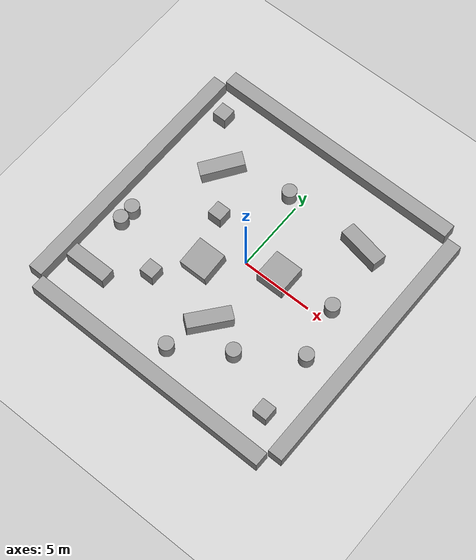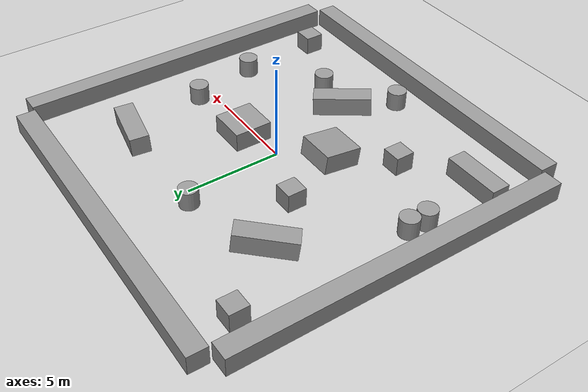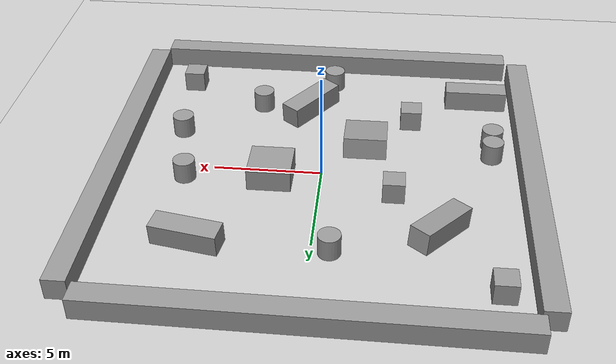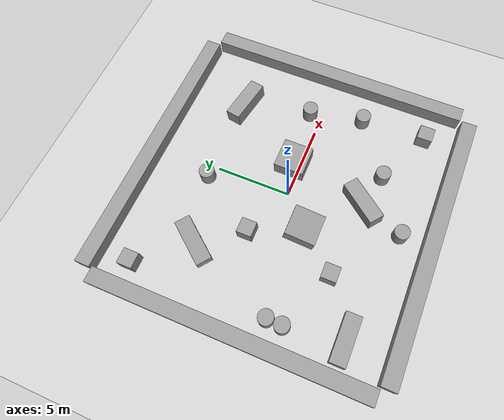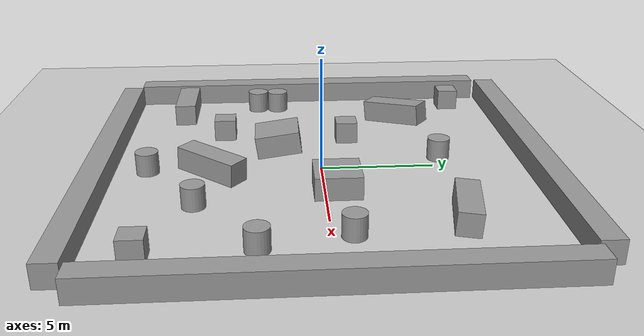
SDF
<sdf version="1.7">
 <world name="default">
  <light name="sun" type="directional">
   <pose>0 0 10 0 -0 0</pose>
   <diffuse>0.8 0.8 0.8 1</diffuse>
   <specular>0.2 0.2 0.2 1</specular>
   <attenuation>
    <range>1000</range>
    <constant>0.9</constant>
    <linear>0.01</linear>
    <quadratic>0.001</quadratic>
   </attenuation>
   <direction>-0.5 0.1 -0.9</direction>
   <spot><inner_angle>0</inner_angle><outer_angle>0</outer_angle><falloff>0</falloff></spot>
  </light>
  <model name="ground_plane">
   <static>1</static>
   <link name="link">
    <collision name="collision">
     <geometry><plane><normal>0 0 1</normal><size>100 100</size></plane></geometry>
     <surface><friction><ode><mu>100</mu><mu2>50</mu2></ode></friction></surface>
    </collision>
    <visual name="visual">
     <cast_shadows>0</cast_shadows>
     <geometry><plane><normal>0 0 1</normal><size>100 100</size></plane></geometry>
     <material>
      <script><uri>file://media/materials/scripts/gazebo.material</uri><name>Gazebo/Grey</name></script>
     </material>
    </visual>
   </link>
  </model>
  <gravity>0 0 -9.8</gravity>
  <magnetic_field>6e-06 2.3e-05 -4.2e-05</magnetic_field>
  <atmosphere type="adiabatic"/>
  <physics type="ode">
   <max_step_size>0.001</max_step_size>
   <real_time_factor>1</real_time_factor>
   <real_time_update_rate>1000</real_time_update_rate>
  </physics>
  <scene><ambient>0.4 0.4 0.4 1</ambient><background>0.7 0.7 0.7 1</background><shadows>1</shadows></scene>
  <spherical_coordinates>
   <surface_model>EARTH_WGS84</surface_model>
   <latitude_deg>0</latitude_deg>
   <longitude_deg>0</longitude_deg>
   <elevation>0</elevation>
   <heading_deg>0</heading_deg>
  </spherical_coordinates>
  <model name="unit_cylinder">
   <pose>-7.92938 -2.84187 0.499992 -3e-06 4e-06 0</pose>
   <link name="link">
    <inertial>
     <mass>1</mass>
     <inertia><ixx>0.145833</ixx><ixy>0</ixy><ixz>0</ixz><iyy>0.145833</iyy><iyz>0</iyz><izz>0.125</izz></inertia>
    </inertial>
    <collision name="collision">
     <geometry><cylinder><radius>0.5</radius><length>1</length></cylinder></geometry>
    </collision>
    <visual name="visual">
     <geometry><cylinder><radius>0.5</radius><length>1</length></cylinder></geometry>
     <material>
      <script><name>Gazebo/Grey</name><uri>file://media/materials/scripts/gazebo.material</uri></script>
     </material>
    </visual>
   </link>
  </model>
  <model name="unit_cylinder_0">
   <pose>-7.88725 -1.82072 0.499992 -3e-06 4e-06 0</pose>
   <link name="link">
    <inertial>
     <mass>1</mass>
     <inertia><ixx>0.145833</ixx><ixy>0</ixy><ixz>0</ixz><iyy>0.145833</iyy><iyz>0</iyz><izz>0.125</izz></inertia>
    </inertial>
    <collision name="collision">
     <geometry><cylinder><radius>0.5</radius><length>1</length></cylinder></geometry>
    </collision>
    <visual name="visual">
     <geometry><cylinder><radius>0.5</radius><length>1</length></cylinder></geometry>
     <material>
      <script><name>Gazebo/Grey</name><uri>file://media/materials/scripts/gazebo.material</uri></script>
     </material>
    </visual>
   </link>
  </model>
  <model name="unit_cylinder_1">
   <pose>-0.038035 -7.61761 0.499992 -3e-06 4e-06 0</pose>
   <link name="link">
    <inertial>
     <mass>1</mass>
     <inertia><ixx>0.145833</ixx><ixy>0</ixy><ixz>0</ixz><iyy>0.145833</iyy><iyz>0</iyz><izz>0.125</izz></inertia>
    </inertial>
    <collision name="collision">
     <geometry><cylinder><radius>0.5</radius><length>1</length></cylinder></geometry>
    </collision>
    <visual name="visual">
     <geometry><cylinder><radius>0.5</radius><length>1</length></cylinder></geometry>
     <material>
      <script><name>Gazebo/Grey</name><uri>file://media/materials/scripts/gazebo.material</uri></script>
     </material>
    </visual>
   </link>
  </model>
  <model name="unit_cylinder_1_clone">
   <pose>3.39415 -5.34145 0.499992 -3e-06 4e-06 0</pose>
   <link name="link">
    <inertial>
     <mass>1</mass>
     <inertia><ixx>0.145833</ixx><ixy>0</ixy><ixz>0</ixz><iyy>0.145833</iyy><iyz>0</iyz><izz>0.125</izz></inertia>
    </inertial>
    <collision name="collision">
     <geometry><cylinder><radius>0.5</radius><length>1</length></cylinder></geometry>
    </collision>
    <visual name="visual">
     <geometry><cylinder><radius>0.5</radius><length>1</length></cylinder></geometry>
     <material>
      <script><name>Gazebo/Grey</name><uri>file://media/materials/scripts/gazebo.material</uri></script>
     </material>
    </visual>
   </link>
  </model>
  <model name="unit_cylinder_1_clone_0">
   <pose>7.00763 -2.75863 0.499992 -3e-06 4e-06 0</pose>
   <link name="link">
    <inertial>
     <mass>1</mass>
     <inertia><ixx>0.145833</ixx><ixy>0</ixy><ixz>0</ixz><iyy>0.145833</iyy><iyz>0</iyz><izz>0.125</izz></inertia>
    </inertial>
    <collision name="collision">
     <geometry><cylinder><radius>0.5</radius><length>1</length></cylinder></geometry>
    </collision>
    <visual name="visual">
     <geometry><cylinder><radius>0.5</radius><length>1</length></cylinder></geometry>
     <material>
      <script><name>Gazebo/Grey</name><uri>file://media/materials/scripts/gazebo.material</uri></script>
     </material>
    </visual>
   </link>
  </model>
  <model name="unit_cylinder_1_clone_1">
   <pose>-0.802606 5.39177 0.499992 -3e-06 4e-06 0</pose>
   <link name="link">
    <inertial>
     <mass>1</mass>
     <inertia><ixx>0.145833</ixx><ixy>0</ixy><ixz>0</ixz><iyy>0.145833</iyy><iyz>0</iyz><izz>0.125</izz></inertia>
    </inertial>
    <collision name="collision">
     <geometry><cylinder><radius>0.5</radius><length>1</length></cylinder></geometry>
    </collision>
    <visual name="visual">
     <geometry><cylinder><radius>0.5</radius><length>1</length></cylinder></geometry>
     <material>
      <script><name>Gazebo/Grey</name><uri>file://media/materials/scripts/gazebo.material</uri></script>
     </material>
    </visual>
   </link>
  </model>
  <model name="unit_box_1">
   <pose>-7.82423 7.24411 0.499995 1e-05 -0 0</pose>
   <link name="link">
    <inertial>
     <mass>1</mass>
     <inertia>
      <ixx>0.166667</ixx>
      <ixy>0</ixy>
      <ixz>0</ixz>
      <iyy>0.166667</iyy>
      <iyz>0</iyz>
      <izz>0.166667</izz>
     </inertia>
    </inertial>
    <collision name="collision"><geometry><box><size>1 1 1</size></box></geometry></collision>
    <visual name="visual">
     <geometry><box><size>1 1 1</size></box></geometry>
     <material>
      <script><name>Gazebo/Grey</name><uri>file://media/materials/scripts/gazebo.material</uri></script>
     </material>
    </visual>
   </link>
  </model>
  <model name="unit_box_2">
   <pose>7.25218 -7.12106 0.499995 1e-05 -0 0</pose>
   <link name="link">
    <inertial>
     <mass>1</mass>
     <inertia>
      <ixx>0.166667</ixx>
      <ixy>0</ixy>
      <ixz>0</ixz>
      <iyy>0.166667</iyy>
      <iyz>0</iyz>
      <izz>0.166667</izz>
     </inertia>
    </inertial>
    <collision name="collision"><geometry><box><size>1 1 1</size></box></geometry></collision>
    <visual name="visual">
     <geometry><box><size>1 1 1</size></box></geometry>
     <material>
      <script><name>Gazebo/Grey</name><uri>file://media/materials/scripts/gazebo.material</uri></script>
     </material>
    </visual>
   </link>
  </model>
  <model name="unit_box_3">
   <pose>-4.04523 -4.39363 0.499995 1e-05 -0 0</pose>
   <link name="link">
    <inertial>
     <mass>1</mass>
     <inertia>
      <ixx>0.166667</ixx>
      <ixy>0</ixy>
      <ixz>0</ixz>
      <iyy>0.166667</iyy>
      <iyz>0</iyz>
      <izz>0.166667</izz>
     </inertia>
    </inertial>
    <collision name="collision"><geometry><box><size>1 1 1</size></box></geometry></collision>
    <visual name="visual">
     <geometry><box><size>1 1 1</size></box></geometry>
     <material>
      <script><name>Gazebo/Grey</name><uri>file://media/materials/scripts/gazebo.material</uri></script>
     </material>
    </visual>
   </link>
  </model>
  <model name="unit_box_4">
   <pose>-3.35202 1.40593 0.499995 1e-05 -0 0</pose>
   <link name="link">
    <inertial>
     <mass>1</mass>
     <inertia>
      <ixx>0.166667</ixx>
      <ixy>0</ixy>
      <ixz>0</ixz>
      <iyy>0.166667</iyy>
      <iyz>0</iyz>
      <izz>0.166667</izz>
     </inertia>
    </inertial>
    <collision name="collision"><geometry><box><size>1 1 1</size></box></geometry></collision>
    <visual name="visual">
     <geometry><box><size>1 1 1</size></box></geometry>
     <material>
      <script><name>Gazebo/Grey</name><uri>file://media/materials/scripts/gazebo.material</uri></script>
     </material>
    </visual>
   </link>
  </model>
  <model name="unit_cylinder_1_clone_2">
   <pose>6.21831 0.83068 0.499992 -3e-06 4e-06 0</pose>
   <link name="link">
    <inertial>
     <mass>1</mass>
     <inertia><ixx>0.145833</ixx><ixy>0</ixy><ixz>0</ixz><iyy>0.145833</iyy><iyz>0</iyz><izz>0.125</izz></inertia>
    </inertial>
    <collision name="collision">
     <geometry><cylinder><radius>0.5</radius><length>1</length></cylinder></geometry>
    </collision>
    <visual name="visual">
     <geometry><cylinder><radius>0.5</radius><length>1</length></cylinder></geometry>
     <material>
      <script><name>Gazebo/Grey</name><uri>file://media/materials/scripts/gazebo.material</uri></script>
     </material>
    </visual>
   </link>
  </model>
  <model name="unit_box_0_clone">
   <link name="link">
    <inertial>
     <mass>1</mass>
     <inertia>
      <ixx>0.166667</ixx>
      <ixy>0</ixy>
      <ixz>0</ixz>
      <iyy>0.166667</iyy>
      <iyz>0</iyz>
      <izz>0.166667</izz>
     </inertia>
    </inertial>
    <visual name="visual">
     <geometry><box><size>2 2 1</size></box></geometry>
     <material>
      <script><name>Gazebo/Grey</name><uri>file://media/materials/scripts/gazebo.material</uri></script>
      <shader type="pixel"><normal_map>__default__</normal_map></shader>
      <ambient>0.3 0.3 0.3 1</ambient>
      <diffuse>0.7 0.7 0.7 1</diffuse>
      <specular>0.01 0.01 0.01 1</specular>
      <emissive>0 0 0 1</emissive>
     </material>
    </visual>
    <collision name="collision">
     <geometry><box><size>2 2 1</size></box></geometry>
     <surface>
      <friction>
       <ode><mu>1</mu><mu2>1</mu2><fdir1>0 0 0</fdir1><slip1>0</slip1><slip2>0</slip2></ode>
       <torsional>
        <coefficient>1</coefficient>
        <patch_radius>0</patch_radius>
        <surface_radius>0</surface_radius>
        <use_patch_radius>1</use_patch_radius>
        <ode><slip>0</slip></ode>
       </torsional>
      </friction>
      <bounce><restitution_coefficient>0</restitution_coefficient><threshold>1e+06</threshold></bounce>
      <contact>
       <collide_without_contact>0</collide_without_contact>
       <collide_without_contact_bitmask>1</collide_without_contact_bitmask>
       <collide_bitmask>1</collide_bitmask>
       <ode>
        <soft_cfm>0</soft_cfm>
        <soft_erp>0.2</soft_erp>
        <kp>1e+13</kp>
        <kd>1</kd>
        <max_vel>0.01</max_vel>
        <min_depth>0</min_depth>
       </ode>
       <bullet>
        <split_impulse>1</split_impulse>
        <split_impulse_penetration_threshold>-0.01</split_impulse_penetration_threshold>
        <soft_cfm>0</soft_cfm>
        <soft_erp>0.2</soft_erp>
        <kp>1e+13</kp>
        <kd>1</kd>
       </bullet>
      </contact>
     </surface>
    </collision>
   </link>
   <static>0</static>
   <pose>2.27067 0.514688 0.51 1.4e-05 -0 0</pose>
  </model>
  <model name="unit_box_0_clone_clone">
   <link name="link">
    <inertial>
     <mass>1</mass>
     <inertia>
      <ixx>0.166667</ixx>
      <ixy>0</ixy>
      <ixz>0</ixz>
      <iyy>0.166667</iyy>
      <iyz>0</iyz>
      <izz>0.166667</izz>
     </inertia>
    </inertial>
    <visual name="visual">
     <geometry><box><size>2 2 1</size></box></geometry>
     <material>
      <script><name>Gazebo/Grey</name><uri>file://media/materials/scripts/gazebo.material</uri></script>
      <shader type="pixel"><normal_map>__default__</normal_map></shader>
      <ambient>0.3 0.3 0.3 1</ambient>
      <diffuse>0.7 0.7 0.7 1</diffuse>
      <specular>0.01 0.01 0.01 1</specular>
      <emissive>0 0 0 1</emissive>
     </material>
    </visual>
    <collision name="collision">
     <geometry><box><size>2 2 1</size></box></geometry>
     <surface>
      <friction>
       <ode><mu>1</mu><mu2>1</mu2><fdir1>0 0 0</fdir1><slip1>0</slip1><slip2>0</slip2></ode>
       <torsional>
        <coefficient>1</coefficient>
        <patch_radius>0</patch_radius>
        <surface_radius>0</surface_radius>
        <use_patch_radius>1</use_patch_radius>
        <ode><slip>0</slip></ode>
       </torsional>
      </friction>
      <bounce><restitution_coefficient>0</restitution_coefficient><threshold>1e+06</threshold></bounce>
      <contact>
       <collide_without_contact>0</collide_without_contact>
       <collide_without_contact_bitmask>1</collide_without_contact_bitmask>
       <collide_bitmask>1</collide_bitmask>
       <ode>
        <soft_cfm>0</soft_cfm>
        <soft_erp>0.2</soft_erp>
        <kp>1e+13</kp>
        <kd>1</kd>
        <max_vel>0.01</max_vel>
        <min_depth>0</min_depth>
       </ode>
       <bullet>
        <split_impulse>1</split_impulse>
        <split_impulse_penetration_threshold>-0.01</split_impulse_penetration_threshold>
        <soft_cfm>0</soft_cfm>
        <soft_erp>0.2</soft_erp>
        <kp>1e+13</kp>
        <kd>1</kd>
       </bullet>
      </contact>
     </surface>
    </collision>
   </link>
   <static>0</static>
   <pose>-1.93384 -1.86993 0.726236 0.135734 -0 0</pose>
  </model>
  <model name="unit_box">
   <link name="link">
    <inertial>
     <mass>1</mass>
     <inertia>
      <ixx>0.166667</ixx>
      <ixy>0</ixy>
      <ixz>0</ixz>
      <iyy>0.166667</iyy>
      <iyz>0</iyz>
      <izz>0.166667</izz>
     </inertia>
    </inertial>
    <gravity>0</gravity>
    <visual name="visual">
     <geometry><box><size>3 1 1</size></box></geometry>
     <material>
      <script><name>Gazebo/Grey</name><uri>file://media/materials/scripts/gazebo.material</uri></script>
      <shader type="pixel"><normal_map>__default__</normal_map></shader>
      <ambient>0.3 0.3 0.3 1</ambient>
      <diffuse>0.7 0.7 0.7 1</diffuse>
      <specular>0.01 0.01 0.01 1</specular>
      <emissive>0 0 0 1</emissive>
     </material>
    </visual>
    <collision name="collision">
     <geometry><box><size>3 1 1</size></box></geometry>
     <surface>
      <friction>
       <ode><mu>1</mu><mu2>1</mu2><fdir1>0 0 0</fdir1><slip1>0</slip1><slip2>0</slip2></ode>
       <torsional>
        <coefficient>1</coefficient>
        <patch_radius>0</patch_radius>
        <surface_radius>0</surface_radius>
        <use_patch_radius>1</use_patch_radius>
        <ode><slip>0</slip></ode>
       </torsional>
      </friction>
      <bounce><restitution_coefficient>0</restitution_coefficient><threshold>1e+06</threshold></bounce>
      <contact>
       <collide_without_contact>0</collide_without_contact>
       <collide_without_contact_bitmask>1</collide_without_contact_bitmask>
       <collide_bitmask>1</collide_bitmask>
       <ode>
        <soft_cfm>0</soft_cfm>
        <soft_erp>0.2</soft_erp>
        <kp>1e+13</kp>
        <kd>1</kd>
        <max_vel>0.01</max_vel>
        <min_depth>0</min_depth>
       </ode>
       <bullet>
        <split_impulse>1</split_impulse>
        <split_impulse_penetration_threshold>-0.01</split_impulse_penetration_threshold>
        <soft_cfm>0</soft_cfm>
        <soft_erp>0.2</soft_erp>
        <kp>1e+13</kp>
        <kd>1</kd>
       </bullet>
      </contact>
     </surface>
    </collision>
   </link>
   <static>0</static>
   <pose>-7.29413 -6.49132 0.5 0 0 -0.00218</pose>
  </model>
  <model name="unit_box_clone_3">
   <link name="link">
    <inertial>
     <mass>1</mass>
     <inertia>
      <ixx>0.166667</ixx>
      <ixy>0</ixy>
      <ixz>0</ixz>
      <iyy>0.166667</iyy>
      <iyz>0</iyz>
      <izz>0.166667</izz>
     </inertia>
    </inertial>
    <visual name="visual">
     <geometry><box><size>3 1 1</size></box></geometry>
     <material>
      <script><name>Gazebo/Grey</name><uri>file://media/materials/scripts/gazebo.material</uri></script>
      <shader type="pixel"><normal_map>__default__</normal_map></shader>
      <ambient>0.3 0.3 0.3 1</ambient>
      <diffuse>0.7 0.7 0.7 1</diffuse>
      <specular>0.01 0.01 0.01 1</specular>
      <emissive>0 0 0 1</emissive>
     </material>
    </visual>
    <collision name="collision">
     <geometry><box><size>3 1 1</size></box></geometry>
     <surface>
      <friction>
       <ode><mu>1</mu><mu2>1</mu2><fdir1>0 0 0</fdir1><slip1>0</slip1><slip2>0</slip2></ode>
       <torsional>
        <coefficient>1</coefficient>
        <patch_radius>0</patch_radius>
        <surface_radius>0</surface_radius>
        <use_patch_radius>1</use_patch_radius>
        <ode><slip>0</slip></ode>
       </torsional>
      </friction>
      <bounce><restitution_coefficient>0</restitution_coefficient><threshold>1e+06</threshold></bounce>
      <contact>
       <collide_without_contact>0</collide_without_contact>
       <collide_without_contact_bitmask>1</collide_without_contact_bitmask>
       <collide_bitmask>1</collide_bitmask>
       <ode>
        <soft_cfm>0</soft_cfm>
        <soft_erp>0.2</soft_erp>
        <kp>1e+13</kp>
        <kd>1</kd>
        <max_vel>0.01</max_vel>
        <min_depth>0</min_depth>
       </ode>
       <bullet>
        <split_impulse>1</split_impulse>
        <split_impulse_penetration_threshold>-0.01</split_impulse_penetration_threshold>
        <soft_cfm>0</soft_cfm>
        <soft_erp>0.2</soft_erp>
        <kp>1e+13</kp>
        <kd>1</kd>
       </bullet>
      </contact>
     </surface>
    </collision>
   </link>
   <static>0</static>
   <pose>-5.34855 4.09559 0.690017 -9e-06 -0.114653 0.908163</pose>
  </model>
  <model name="unit_box_clone_4">
   <link name="link">
    <inertial>
     <mass>1</mass>
     <inertia>
      <ixx>0.166667</ixx>
      <ixy>0</ixy>
      <ixz>0</ixz>
      <iyy>0.166667</iyy>
      <iyz>0</iyz>
      <izz>0.166667</izz>
     </inertia>
    </inertial>
    <visual name="visual">
     <geometry><box><size>3 1 1</size></box></geometry>
     <material>
      <script><name>Gazebo/Grey</name><uri>file://media/materials/scripts/gazebo.material</uri></script>
      <shader type="pixel"><normal_map>__default__</normal_map></shader>
      <ambient>0.3 0.3 0.3 1</ambient>
      <diffuse>0.7 0.7 0.7 1</diffuse>
      <specular>0.01 0.01 0.01 1</specular>
      <emissive>0 0 0 1</emissive>
     </material>
    </visual>
    <collision name="collision">
     <geometry><box><size>3 1 1</size></box></geometry>
     <surface>
      <friction>
       <ode><mu>1</mu><mu2>1</mu2><fdir1>0 0 0</fdir1><slip1>0</slip1><slip2>0</slip2></ode>
       <torsional>
        <coefficient>1</coefficient>
        <patch_radius>0</patch_radius>
        <surface_radius>0</surface_radius>
        <use_patch_radius>1</use_patch_radius>
        <ode><slip>0</slip></ode>
       </torsional>
      </friction>
      <bounce><restitution_coefficient>0</restitution_coefficient><threshold>1e+06</threshold></bounce>
      <contact>
       <collide_without_contact>0</collide_without_contact>
       <collide_without_contact_bitmask>1</collide_without_contact_bitmask>
       <collide_bitmask>1</collide_bitmask>
       <ode>
        <soft_cfm>0</soft_cfm>
        <soft_erp>0.2</soft_erp>
        <kp>1e+13</kp>
        <kd>1</kd>
        <max_vel>0.01</max_vel>
        <min_depth>0</min_depth>
       </ode>
       <bullet>
        <split_impulse>1</split_impulse>
        <split_impulse_penetration_threshold>-0.01</split_impulse_penetration_threshold>
        <soft_cfm>0</soft_cfm>
        <soft_erp>0.2</soft_erp>
        <kp>1e+13</kp>
        <kd>1</kd>
       </bullet>
      </contact>
     </surface>
    </collision>
   </link>
   <static>0</static>
   <pose>5.17903 5.30696 0.544855 -0.054144 0.000301 -0.185682</pose>
  </model>
  <model name="unit_box_clone_5">
   <link name="link">
    <inertial>
     <mass>1</mass>
     <inertia>
      <ixx>0.166667</ixx>
      <ixy>0</ixy>
      <ixz>0</ixz>
      <iyy>0.166667</iyy>
      <iyz>0</iyz>
      <izz>0.166667</izz>
     </inertia>
    </inertial>
    <visual name="visual">
     <geometry><box><size>3 1 1</size></box></geometry>
     <material>
      <script><name>Gazebo/Grey</name><uri>file://media/materials/scripts/gazebo.material</uri></script>
      <shader type="pixel"><normal_map>__default__</normal_map></shader>
      <ambient>0.3 0.3 0.3 1</ambient>
      <diffuse>0.7 0.7 0.7 1</diffuse>
      <specular>0.01 0.01 0.01 1</specular>
      <emissive>0 0 0 1</emissive>
     </material>
    </visual>
    <collision name="collision">
     <geometry><box><size>3 1 1</size></box></geometry>
     <surface>
      <friction>
       <ode><mu>1</mu><mu2>1</mu2><fdir1>0 0 0</fdir1><slip1>0</slip1><slip2>0</slip2></ode>
       <torsional>
        <coefficient>1</coefficient>
        <patch_radius>0</patch_radius>
        <surface_radius>0</surface_radius>
        <use_patch_radius>1</use_patch_radius>
        <ode><slip>0</slip></ode>
       </torsional>
      </friction>
      <bounce><restitution_coefficient>0</restitution_coefficient><threshold>1e+06</threshold></bounce>
      <contact>
       <collide_without_contact>0</collide_without_contact>
       <collide_without_contact_bitmask>1</collide_without_contact_bitmask>
       <collide_bitmask>1</collide_bitmask>
       <ode>
        <soft_cfm>0</soft_cfm>
        <soft_erp>0.2</soft_erp>
        <kp>1e+13</kp>
        <kd>1</kd>
        <max_vel>0.01</max_vel>
        <min_depth>0</min_depth>
       </ode>
       <bullet>
        <split_impulse>1</split_impulse>
        <split_impulse_penetration_threshold>-0.01</split_impulse_penetration_threshold>
        <soft_cfm>0</soft_cfm>
        <soft_erp>0.2</soft_erp>
        <kp>1e+13</kp>
        <kd>1</kd>
       </bullet>
      </contact>
     </surface>
    </collision>
   </link>
   <static>0</static>
   <pose>0.937755 -4.73393 0.796795 7.9e-05 0.043417 0.905868</pose>
  </model>
  <model name="unit_box_0">
   <link name="link">
    <inertial>
     <mass>1</mass>
     <inertia>
      <ixx>0.166667</ixx>
      <ixy>0</ixy>
      <ixz>0</ixz>
      <iyy>0.166667</iyy>
      <iyz>0</iyz>
      <izz>0.166667</izz>
     </inertia>
    </inertial>
    <gravity>0</gravity>
    <visual name="visual">
     <geometry><box><size>1 18 1</size></box></geometry>
     <material>
      <script><name>Gazebo/Grey</name><uri>file://media/materials/scripts/gazebo.material</uri></script>
      <shader type="pixel"><normal_map>__default__</normal_map></shader>
      <ambient>0.3 0.3 0.3 1</ambient>
      <diffuse>0.7 0.7 0.7 1</diffuse>
      <specular>0.01 0.01 0.01 1</specular>
      <emissive>0 0 0 1</emissive>
     </material>
    </visual>
    <collision name="collision">
     <geometry><box><size>1 18 1</size></box></geometry>
     <surface>
      <friction>
       <ode><mu>1</mu><mu2>1</mu2><fdir1>0 0 0</fdir1><slip1>0</slip1><slip2>0</slip2></ode>
       <torsional>
        <coefficient>1</coefficient>
        <patch_radius>0</patch_radius>
        <surface_radius>0</surface_radius>
        <use_patch_radius>1</use_patch_radius>
        <ode><slip>0</slip></ode>
       </torsional>
      </friction>
      <bounce><restitution_coefficient>0</restitution_coefficient><threshold>1e+06</threshold></bounce>
      <contact>
       <collide_without_contact>0</collide_without_contact>
       <collide_without_contact_bitmask>1</collide_without_contact_bitmask>
       <collide_bitmask>1</collide_bitmask>
       <ode>
        <soft_cfm>0</soft_cfm>
        <soft_erp>0.2</soft_erp>
        <kp>1e+13</kp>
        <kd>1</kd>
        <max_vel>0.01</max_vel>
        <min_depth>0</min_depth>
       </ode>
       <bullet>
        <split_impulse>1</split_impulse>
        <split_impulse_penetration_threshold>-0.01</split_impulse_penetration_threshold>
        <soft_cfm>0</soft_cfm>
        <soft_erp>0.2</soft_erp>
        <kp>1e+13</kp>
        <kd>1</kd>
       </bullet>
      </contact>
     </surface>
    </collision>
   </link>
   <static>0</static>
   <pose>9.54859 0.011793 0.51 0 -0 0</pose>
  </model>
  <model name="unit_box_0_clone_0">
   <link name="link">
    <inertial>
     <mass>1</mass>
     <inertia>
      <ixx>0.166667</ixx>
      <ixy>0</ixy>
      <ixz>0</ixz>
      <iyy>0.166667</iyy>
      <iyz>0</iyz>
      <izz>0.166667</izz>
     </inertia>
    </inertial>
    <gravity>0</gravity>
    <visual name="visual">
     <geometry><box><size>1 18 1</size></box></geometry>
     <material>
      <script><name>Gazebo/Grey</name><uri>file://media/materials/scripts/gazebo.material</uri></script>
      <shader type="pixel"><normal_map>__default__</normal_map></shader>
      <ambient>0.3 0.3 0.3 1</ambient>
      <diffuse>0.7 0.7 0.7 1</diffuse>
      <specular>0.01 0.01 0.01 1</specular>
      <emissive>0 0 0 1</emissive>
     </material>
    </visual>
    <collision name="collision">
     <geometry><box><size>1 18 1</size></box></geometry>
     <surface>
      <friction>
       <ode><mu>1</mu><mu2>1</mu2><fdir1>0 0 0</fdir1><slip1>0</slip1><slip2>0</slip2></ode>
       <torsional>
        <coefficient>1</coefficient>
        <patch_radius>0</patch_radius>
        <surface_radius>0</surface_radius>
        <use_patch_radius>1</use_patch_radius>
        <ode><slip>0</slip></ode>
       </torsional>
      </friction>
      <bounce><restitution_coefficient>0</restitution_coefficient><threshold>1e+06</threshold></bounce>
      <contact>
       <collide_without_contact>0</collide_without_contact>
       <collide_without_contact_bitmask>1</collide_without_contact_bitmask>
       <collide_bitmask>1</collide_bitmask>
       <ode>
        <soft_cfm>0</soft_cfm>
        <soft_erp>0.2</soft_erp>
        <kp>1e+13</kp>
        <kd>1</kd>
        <max_vel>0.01</max_vel>
        <min_depth>0</min_depth>
       </ode>
       <bullet>
        <split_impulse>1</split_impulse>
        <split_impulse_penetration_threshold>-0.01</split_impulse_penetration_threshold>
        <soft_cfm>0</soft_cfm>
        <soft_erp>0.2</soft_erp>
        <kp>1e+13</kp>
        <kd>1</kd>
       </bullet>
      </contact>
     </surface>
    </collision>
   </link>
   <static>0</static>
   <pose>-9.54472 -0.05519 0.51 0 -0 0</pose>
  </model>
  <model name="unit_box_0_clone_0_clone">
   <link name="link">
    <inertial>
     <mass>1</mass>
     <inertia>
      <ixx>0.166667</ixx>
      <ixy>0</ixy>
      <ixz>0</ixz>
      <iyy>0.166667</iyy>
      <iyz>0</iyz>
      <izz>0.166667</izz>
     </inertia>
    </inertial>
    <gravity>0</gravity>
    <visual name="visual">
     <geometry><box><size>1 18 1</size></box></geometry>
     <material>
      <script><name>Gazebo/Grey</name><uri>file://media/materials/scripts/gazebo.material</uri></script>
      <shader type="pixel"><normal_map>__default__</normal_map></shader>
      <ambient>0.3 0.3 0.3 1</ambient>
      <diffuse>0.7 0.7 0.7 1</diffuse>
      <specular>0.01 0.01 0.01 1</specular>
      <emissive>0 0 0 1</emissive>
     </material>
    </visual>
    <collision name="collision">
     <geometry><box><size>1 18 1</size></box></geometry>
     <surface>
      <friction>
       <ode><mu>1</mu><mu2>1</mu2><fdir1>0 0 0</fdir1><slip1>0</slip1><slip2>0</slip2></ode>
       <torsional>
        <coefficient>1</coefficient>
        <patch_radius>0</patch_radius>
        <surface_radius>0</surface_radius>
        <use_patch_radius>1</use_patch_radius>
        <ode><slip>0</slip></ode>
       </torsional>
      </friction>
      <bounce><restitution_coefficient>0</restitution_coefficient><threshold>1e+06</threshold></bounce>
      <contact>
       <collide_without_contact>0</collide_without_contact>
       <collide_without_contact_bitmask>1</collide_without_contact_bitmask>
       <collide_bitmask>1</collide_bitmask>
       <ode>
        <soft_cfm>0</soft_cfm>
        <soft_erp>0.2</soft_erp>
        <kp>1e+13</kp>
        <kd>1</kd>
        <max_vel>0.01</max_vel>
        <min_depth>0</min_depth>
       </ode>
       <bullet>
        <split_impulse>1</split_impulse>
        <split_impulse_penetration_threshold>-0.01</split_impulse_penetration_threshold>
        <soft_cfm>0</soft_cfm>
        <soft_erp>0.2</soft_erp>
        <kp>1e+13</kp>
        <kd>1</kd>
       </bullet>
      </contact>
     </surface>
    </collision>
   </link>
   <static>0</static>
   <pose>-0.170624 9.54725 0.51 0 0 -1.57871</pose>
  </model>
  <model name="unit_box_0_clone_0_clone_clone_clone">
   <link name="link">
    <inertial>
     <mass>1</mass>
     <inertia>
      <ixx>0.166667</ixx>
      <ixy>0</ixy>
      <ixz>0</ixz>
      <iyy>0.166667</iyy>
      <iyz>0</iyz>
      <izz>0.166667</izz>
     </inertia>
    </inertial>
    <gravity>0</gravity>
    <visual name="visual">
     <geometry><box><size>1 18 1</size></box></geometry>
     <material>
      <script><name>Gazebo/Grey</name><uri>file://media/materials/scripts/gazebo.material</uri></script>
      <shader type="pixel"><normal_map>__default__</normal_map></shader>
      <ambient>0.3 0.3 0.3 1</ambient>
      <diffuse>0.7 0.7 0.7 1</diffuse>
      <specular>0.01 0.01 0.01 1</specular>
      <emissive>0 0 0 1</emissive>
     </material>
    </visual>
    <collision name="collision">
     <geometry><box><size>1 18 1</size></box></geometry>
     <surface>
      <friction>
       <ode><mu>1</mu><mu2>1</mu2><fdir1>0 0 0</fdir1><slip1>0</slip1><slip2>0</slip2></ode>
       <torsional>
        <coefficient>1</coefficient>
        <patch_radius>0</patch_radius>
        <surface_radius>0</surface_radius>
        <use_patch_radius>1</use_patch_radius>
        <ode><slip>0</slip></ode>
       </torsional>
      </friction>
      <bounce><restitution_coefficient>0</restitution_coefficient><threshold>1e+06</threshold></bounce>
      <contact>
       <collide_without_contact>0</collide_without_contact>
       <collide_without_contact_bitmask>1</collide_without_contact_bitmask>
       <collide_bitmask>1</collide_bitmask>
       <ode>
        <soft_cfm>0</soft_cfm>
        <soft_erp>0.2</soft_erp>
        <kp>1e+13</kp>
        <kd>1</kd>
        <max_vel>0.01</max_vel>
        <min_depth>0</min_depth>
       </ode>
       <bullet>
        <split_impulse>1</split_impulse>
        <split_impulse_penetration_threshold>-0.01</split_impulse_penetration_threshold>
        <soft_cfm>0</soft_cfm>
        <soft_erp>0.2</soft_erp>
        <kp>1e+13</kp>
        <kd>1</kd>
       </bullet>
      </contact>
     </surface>
    </collision>
   </link>
   <static>0</static>
   <pose>0.093603 -9.57673 0.51 0 0 -1.57871</pose>
  </model>
 </world>
</sdf>
